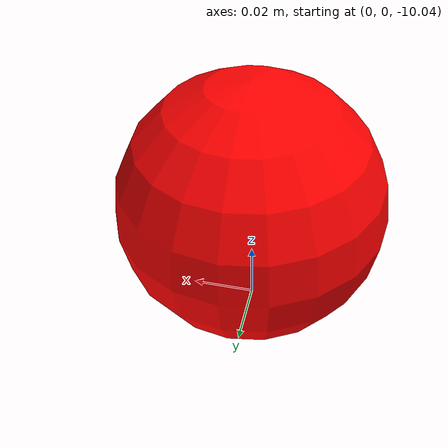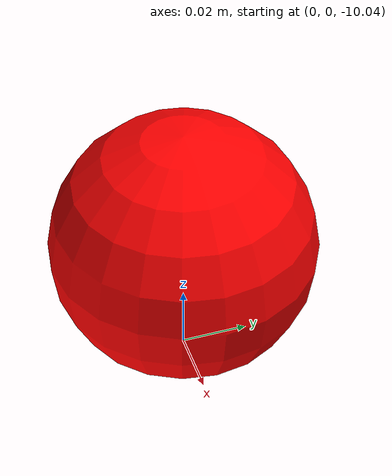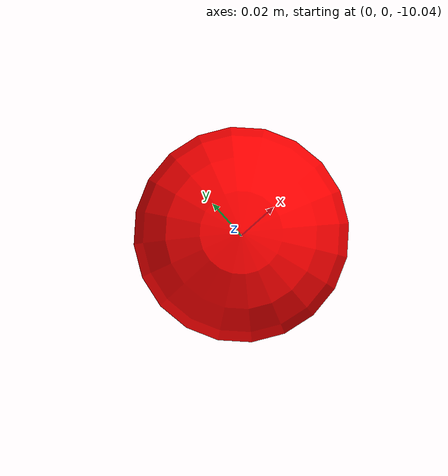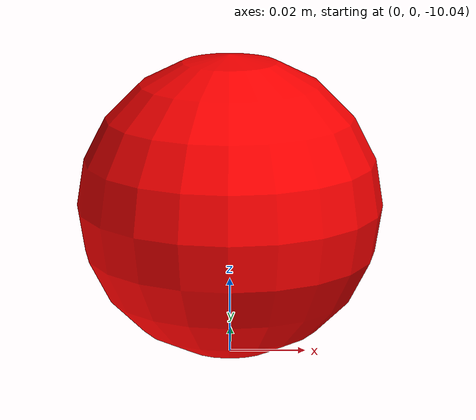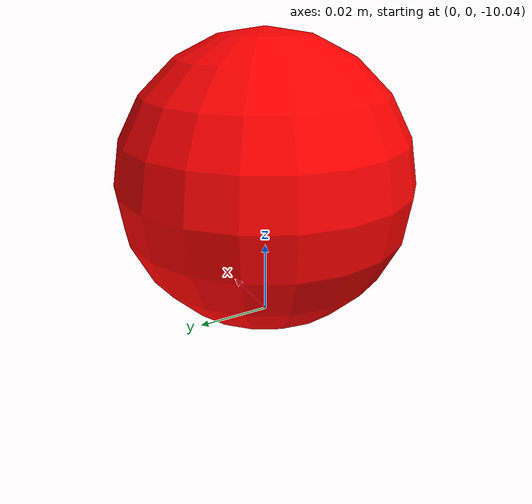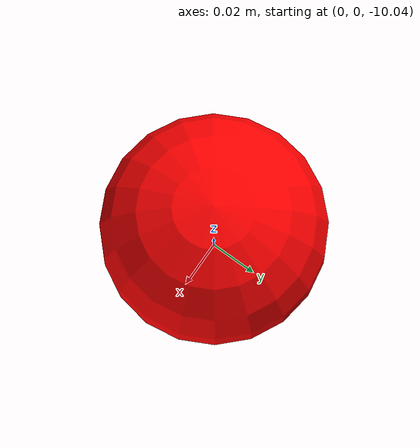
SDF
<?xml version="1.0"?>
<!-- Responsibility: define the minimal Lite 6 table world for Gazebo Sim. -->
<sdf version="1.10">
  <world name="lite6_table">
    <physics name="1ms" type="ignored">
      <max_step_size>0.001</max_step_size>
      <real_time_factor>1.0</real_time_factor>
      <real_time_update_rate>1000</real_time_update_rate>
    </physics>

    <plugin
      filename="gz-sim-physics-system"
      name="gz::sim::systems::Physics"/>
    <plugin
      filename="gz-sim-user-commands-system"
      name="gz::sim::systems::UserCommands"/>
    <plugin
      filename="gz-sim-scene-broadcaster-system"
      name="gz::sim::systems::SceneBroadcaster"/>

    <gravity>0 0 -9.81</gravity>

    <scene>
      <ambient>0.4 0.4 0.4 1</ambient>
      <background>0.7 0.7 0.7 1</background>
      <shadows>true</shadows>
    </scene>

    <model name="ground_plane">
      <static>true</static>
      <link name="ground_link">
        <collision name="ground_collision">
          <geometry>
            <plane>
              <normal>0 0 1</normal>
              <size>20 20</size>
            </plane>
          </geometry>
        </collision>
        <visual name="ground_visual">
          <geometry>
            <plane>
              <normal>0 0 1</normal>
              <size>20 20</size>
            </plane>
          </geometry>
          <material>
            <ambient>0.7 0.7 0.7 1</ambient>
            <diffuse>0.7 0.7 0.7 1</diffuse>
          </material>
        </visual>
      </link>
    </model>

    <model name="round_table">
      <static>true</static>
      <!-- A 5 cm tabletop centered at z=0.725 has its top at z=0.75. -->
      <pose>0 0 0.725 0 0 0</pose>
      <link name="tabletop">
        <collision name="tabletop_collision">
          <geometry>
            <cylinder>
              <radius>0.5</radius>
              <length>0.05</length>
            </cylinder>
          </geometry>
        </collision>
        <visual name="tabletop_visual">
          <geometry>
            <cylinder>
              <radius>0.5</radius>
              <length>0.05</length>
            </cylinder>
          </geometry>
          <material>
            <ambient>0.34 0.20 0.10 1</ambient>
            <diffuse>0.55 0.32 0.16 1</diffuse>
            <specular>0.08 0.08 0.08 1</specular>
          </material>
        </visual>
      </link>
    </model>

    <!-- Visual-only marker for the current /face/center sample. Its ROS adapter
         moves it into view after receiving a fresh target. -->
    <model name="face_target_marker">
      <static>true</static>
      <pose>0 0 -10 0 0 0</pose>
      <link name="marker_link">
        <visual name="marker_visual">
          <cast_shadows>false</cast_shadows>
          <geometry>
            <sphere>
              <radius>0.04</radius>
            </sphere>
          </geometry>
          <material>
            <ambient>1.0 0.0 0.0 1.0</ambient>
            <diffuse>1.0 0.0 0.0 1.0</diffuse>
            <emissive>0.8 0.0 0.0 1.0</emissive>
          </material>
        </visual>
      </link>
    </model>

    <light name="sun" type="directional">
      <pose>0 0 10 0 0 0</pose>
      <cast_shadows>true</cast_shadows>
      <intensity>1.0</intensity>
      <direction>-0.5 0.1 -0.9</direction>
      <diffuse>0.8 0.8 0.8 1</diffuse>
      <specular>0.2 0.2 0.2 1</specular>
    </light>
  </world>
</sdf>
